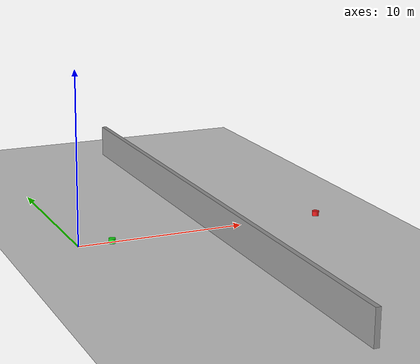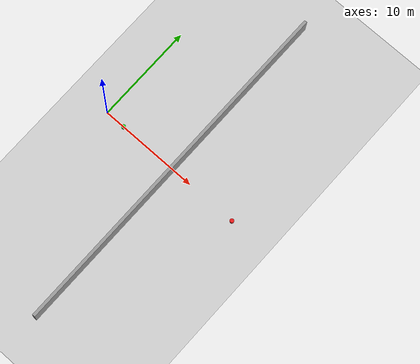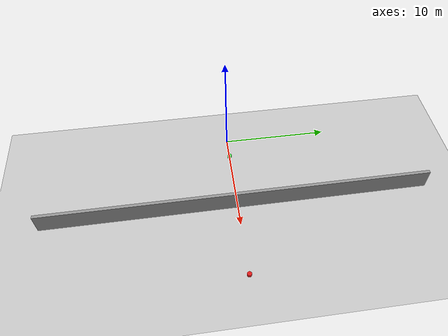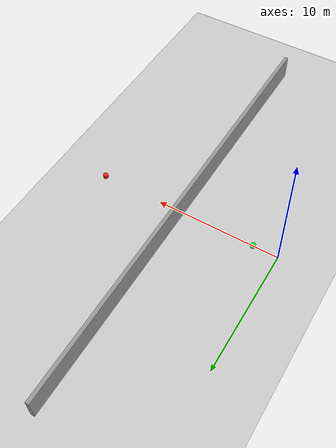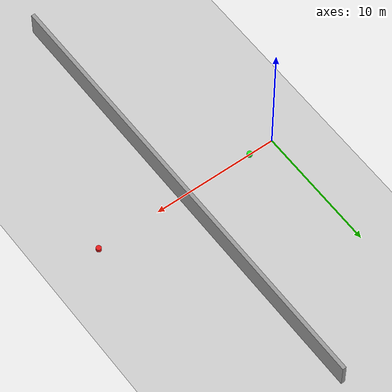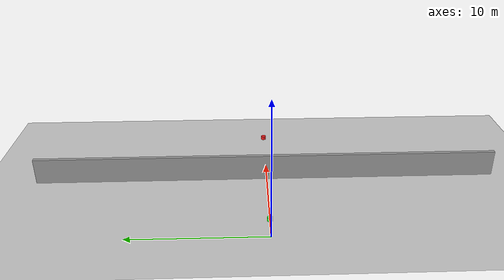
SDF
<?xml version="1.0" ?>
<sdf version="1.6">
  <world name="long_wall">

    <physics type="ode">
      <max_step_size>0.001</max_step_size>
      <real_time_factor>1.0</real_time_factor>
      <real_time_update_rate>1000</real_time_update_rate>
      <gravity>0 0 -9.81</gravity>
      <ode>
        <solver><type>quick</type><iters>50</iters><sor>1.3</sor></solver>
        <constraints>
          <cfm>0.0</cfm><erp>0.2</erp>
          <contact_max_correcting_vel>100.0</contact_max_correcting_vel>
          <contact_surface_layer>0.001</contact_surface_layer>
        </constraints>
      </ode>
    </physics>

    <scene>
      <ambient>0.5 0.5 0.5 1.0</ambient>
      <shadows>false</shadows>
      <grid>false</grid>
    </scene>

    <include><uri>model://sun</uri></include>
    <include><uri>model://ground_plane</uri></include>

    <!-- The long wall: 36m wide, 2.0m tall, 0.3m thick -->
    <!-- pose: center at (8, 0, 1.0) → spans z=0 to z=2.0, y=-18 to y=18 -->
    <model name="the_long_wall">
      <static>true</static>
      <pose>8 0 1.0 0 0 0</pose>
      <link name="link">
        <collision name="collision">
          <geometry>
            <box><size>0.3 36 2.0</size></box>
          </geometry>
        </collision>
        <visual name="visual">
          <geometry>
            <box><size>0.3 36 2.0</size></box>
          </geometry>
          <material>
            <ambient>0.6 0.6 0.6 1.0</ambient>
            <diffuse>0.6 0.6 0.6 1.0</diffuse>
          </material>
        </visual>
      </link>
    </model>

    <!-- Marker cylinders on both sides to help orient in RViz -->
    <model name="marker_start"><static>true</static><pose>2 0 0 0 0 0</pose>
      <link name="link">
        <collision name="c"><geometry><cylinder><radius>0.2</radius><length>0.5</length></cylinder></geometry></collision>
        <visual name="v"><geometry><cylinder><radius>0.2</radius><length>0.5</length></cylinder></geometry>
          <material><ambient>0.1 0.9 0.1 1</ambient><diffuse>0.1 0.9 0.1 1</diffuse></material></visual>
      </link></model>

    <model name="marker_goal"><static>true</static><pose>15 0 0 0 0 0</pose>
      <link name="link">
        <collision name="c"><geometry><cylinder><radius>0.2</radius><length>0.5</length></cylinder></geometry></collision>
        <visual name="v"><geometry><cylinder><radius>0.2</radius><length>0.5</length></cylinder></geometry>
          <material><ambient>0.9 0.1 0.1 1</ambient><diffuse>0.9 0.1 0.1 1</diffuse></material></visual>
      </link></model>

  </world>
</sdf>
